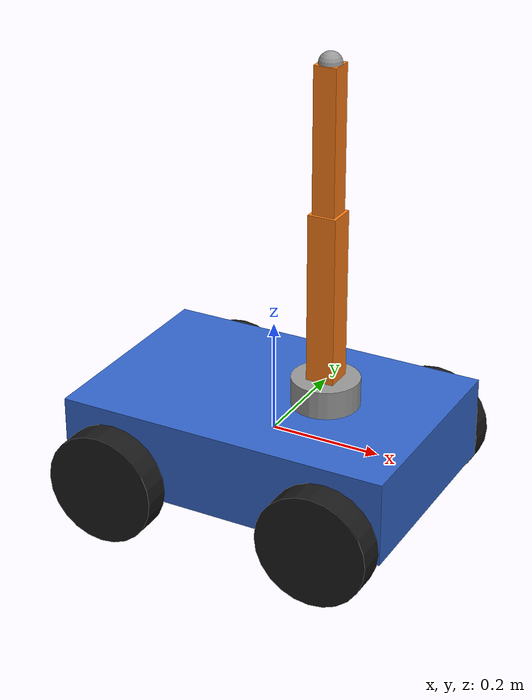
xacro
<?xml version="1.0"?>
<!-- sample_robot: 4-wheel box base + 2-DOF planar arm (shoulder/elbow pitch). SI units (m, kg, rad). -->
<robot name="sample_robot" xmlns:xacro="http://www.ros.org/wiki/xacro">

  <!-- ===== Parameters ===== -->
  <xacro:property name="PI" value="3.14159265358979"/>

  <xacro:property name="base_x" value="0.6"/>
  <xacro:property name="base_y" value="0.4"/>
  <xacro:property name="base_z" value="0.15"/>
  <xacro:property name="base_m" value="10.0"/>

  <xacro:property name="wheel_r" value="0.1"/>
  <xacro:property name="wheel_w" value="0.05"/>
  <xacro:property name="wheel_m" value="1.0"/>
  <xacro:property name="wheel_x" value="0.2"/>
  <xacro:property name="wheel_gap" value="0.005"/>
  <xacro:property name="wheel_y" value="${base_y/2 + wheel_gap + wheel_w/2}"/>
  <xacro:property name="wheel_z" value="-0.05"/>

  <xacro:property name="ped_r" value="0.06"/>
  <xacro:property name="ped_h" value="0.05"/>
  <xacro:property name="ped_m" value="0.5"/>
  <xacro:property name="ped_x" value="0.1"/>

  <xacro:property name="ua_x" value="0.05"/>
  <xacro:property name="ua_y" value="0.05"/>
  <xacro:property name="ua_l" value="0.3"/>
  <xacro:property name="ua_m" value="1.0"/>

  <xacro:property name="fa_x" value="0.04"/>
  <xacro:property name="fa_y" value="0.04"/>
  <xacro:property name="fa_l" value="0.25"/>
  <xacro:property name="fa_m" value="0.6"/>

  <xacro:property name="tip_r" value="0.02"/>
  <xacro:property name="tip_m" value="0.05"/>

  <!-- ===== Materials ===== -->
  <material name="blue"><color rgba="0.2 0.4 0.8 1"/></material>
  <material name="black"><color rgba="0.1 0.1 0.1 1"/></material>
  <material name="orange"><color rgba="1.0 0.5 0.1 1"/></material>
  <material name="grey"><color rgba="0.6 0.6 0.6 1"/></material>

  <!-- ===== Inertia macros (shape formulas) ===== -->
  <xacro:macro name="box_inertial" params="m x y z *origin">
    <inertial>
      <xacro:insert_block name="origin"/>
      <mass value="${m}"/>
      <inertia ixx="${m/12*(y*y+z*z)}" ixy="0" ixz="0"
               iyy="${m/12*(x*x+z*z)}" iyz="0"
               izz="${m/12*(x*x+y*y)}"/>
    </inertial>
  </xacro:macro>

  <!-- cylinder with its axis along link z -->
  <xacro:macro name="cylinder_z_inertial" params="m r h">
    <inertial>
      <origin xyz="0 0 0" rpy="0 0 0"/>
      <mass value="${m}"/>
      <inertia ixx="${m/12*(3*r*r+h*h)}" ixy="0" ixz="0"
               iyy="${m/12*(3*r*r+h*h)}" iyz="0"
               izz="${m*r*r/2}"/>
    </inertial>
  </xacro:macro>

  <!-- cylinder with its axis along link y (wheels) -->
  <xacro:macro name="cylinder_y_inertial" params="m r h">
    <inertial>
      <origin xyz="0 0 0" rpy="0 0 0"/>
      <mass value="${m}"/>
      <inertia ixx="${m/12*(3*r*r+h*h)}" ixy="0" ixz="0"
               iyy="${m*r*r/2}" iyz="0"
               izz="${m/12*(3*r*r+h*h)}"/>
    </inertial>
  </xacro:macro>

  <xacro:macro name="sphere_inertial" params="m r">
    <inertial>
      <origin xyz="0 0 0" rpy="0 0 0"/>
      <mass value="${m}"/>
      <inertia ixx="${2/5*m*r*r}" ixy="0" ixz="0"
               iyy="${2/5*m*r*r}" iyz="0"
               izz="${2/5*m*r*r}"/>
    </inertial>
  </xacro:macro>

  <!-- ===== Wheel macro ===== -->
  <xacro:macro name="wheel" params="prefix x y">
    <link name="${prefix}_wheel_link">
      <visual>
        <origin xyz="0 0 0" rpy="${PI/2} 0 0"/>
        <geometry><cylinder radius="${wheel_r}" length="${wheel_w}"/></geometry>
        <material name="black"/>
      </visual>
      <collision>
        <origin xyz="0 0 0" rpy="${PI/2} 0 0"/>
        <geometry><cylinder radius="${wheel_r}" length="${wheel_w}"/></geometry>
      </collision>
      <xacro:cylinder_y_inertial m="${wheel_m}" r="${wheel_r}" h="${wheel_w}"/>
    </link>
    <joint name="${prefix}_wheel_joint" type="continuous">
      <parent link="base_link"/>
      <child link="${prefix}_wheel_link"/>
      <origin xyz="${x} ${y} ${wheel_z}" rpy="0 0 0"/>
      <axis xyz="0 1 0"/>
      <limit effort="5.0" velocity="10.0"/>
      <dynamics damping="0.1" friction="0.0"/>
    </joint>
  </xacro:macro>

  <!-- ===== Base ===== -->
  <link name="base_link">
    <visual>
      <origin xyz="0 0 0" rpy="0 0 0"/>
      <geometry><box size="${base_x} ${base_y} ${base_z}"/></geometry>
      <material name="blue"/>
    </visual>
    <collision>
      <origin xyz="0 0 0" rpy="0 0 0"/>
      <geometry><box size="${base_x} ${base_y} ${base_z}"/></geometry>
    </collision>
    <xacro:box_inertial m="${base_m}" x="${base_x}" y="${base_y}" z="${base_z}">
      <origin xyz="0 0 0" rpy="0 0 0"/>
    </xacro:box_inertial>
  </link>

  <xacro:wheel prefix="front_left"  x="${wheel_x}"  y="${wheel_y}"/>
  <xacro:wheel prefix="front_right" x="${wheel_x}"  y="${-wheel_y}"/>
  <xacro:wheel prefix="rear_left"   x="${-wheel_x}" y="${wheel_y}"/>
  <xacro:wheel prefix="rear_right"  x="${-wheel_x}" y="${-wheel_y}"/>

  <!-- ===== Arm ===== -->
  <link name="arm_pedestal_link">
    <visual>
      <origin xyz="0 0 0" rpy="0 0 0"/>
      <geometry><cylinder radius="${ped_r}" length="${ped_h}"/></geometry>
      <material name="grey"/>
    </visual>
    <collision>
      <origin xyz="0 0 0" rpy="0 0 0"/>
      <geometry><cylinder radius="${ped_r}" length="${ped_h}"/></geometry>
    </collision>
    <xacro:cylinder_z_inertial m="${ped_m}" r="${ped_r}" h="${ped_h}"/>
  </link>
  <joint name="base_to_arm_pedestal_joint" type="fixed">
    <parent link="base_link"/>
    <child link="arm_pedestal_link"/>
    <origin xyz="${ped_x} 0 ${base_z/2 + ped_h/2}" rpy="0 0 0"/>
  </joint>

  <link name="upper_arm_link">
    <visual>
      <origin xyz="0 0 ${ua_l/2}" rpy="0 0 0"/>
      <geometry><box size="${ua_x} ${ua_y} ${ua_l}"/></geometry>
      <material name="orange"/>
    </visual>
    <collision>
      <origin xyz="0 0 ${ua_l/2}" rpy="0 0 0"/>
      <geometry><box size="${ua_x} ${ua_y} ${ua_l}"/></geometry>
    </collision>
    <xacro:box_inertial m="${ua_m}" x="${ua_x}" y="${ua_y}" z="${ua_l}">
      <origin xyz="0 0 ${ua_l/2}" rpy="0 0 0"/>
    </xacro:box_inertial>
  </link>
  <joint name="shoulder_joint" type="revolute">
    <parent link="arm_pedestal_link"/>
    <child link="upper_arm_link"/>
    <origin xyz="0 0 ${ped_h/2}" rpy="0 0 0"/>
    <axis xyz="0 1 0"/>
    <limit lower="-1.5708" upper="1.5708" effort="20.0" velocity="1.5"/>
    <dynamics damping="0.1" friction="0.0"/>
  </joint>

  <link name="forearm_link">
    <visual>
      <origin xyz="0 0 ${fa_l/2}" rpy="0 0 0"/>
      <geometry><box size="${fa_x} ${fa_y} ${fa_l}"/></geometry>
      <material name="orange"/>
    </visual>
    <collision>
      <origin xyz="0 0 ${fa_l/2}" rpy="0 0 0"/>
      <geometry><box size="${fa_x} ${fa_y} ${fa_l}"/></geometry>
    </collision>
    <xacro:box_inertial m="${fa_m}" x="${fa_x}" y="${fa_y}" z="${fa_l}">
      <origin xyz="0 0 ${fa_l/2}" rpy="0 0 0"/>
    </xacro:box_inertial>
  </link>
  <joint name="elbow_joint" type="revolute">
    <parent link="upper_arm_link"/>
    <child link="forearm_link"/>
    <origin xyz="0 0 ${ua_l}" rpy="0 0 0"/>
    <axis xyz="0 1 0"/>
    <limit lower="-2.5" upper="2.5" effort="10.0" velocity="2.0"/>
    <dynamics damping="0.1" friction="0.0"/>
  </joint>

  <link name="tool_link">
    <visual>
      <origin xyz="0 0 0" rpy="0 0 0"/>
      <geometry><sphere radius="${tip_r}"/></geometry>
      <material name="grey"/>
    </visual>
    <collision>
      <origin xyz="0 0 0" rpy="0 0 0"/>
      <geometry><sphere radius="${tip_r}"/></geometry>
    </collision>
    <xacro:sphere_inertial m="${tip_m}" r="${tip_r}"/>
  </link>
  <joint name="forearm_to_tool_joint" type="fixed">
    <parent link="forearm_link"/>
    <child link="tool_link"/>
    <origin xyz="0 0 ${fa_l}" rpy="0 0 0"/>
  </joint>

</robot>
